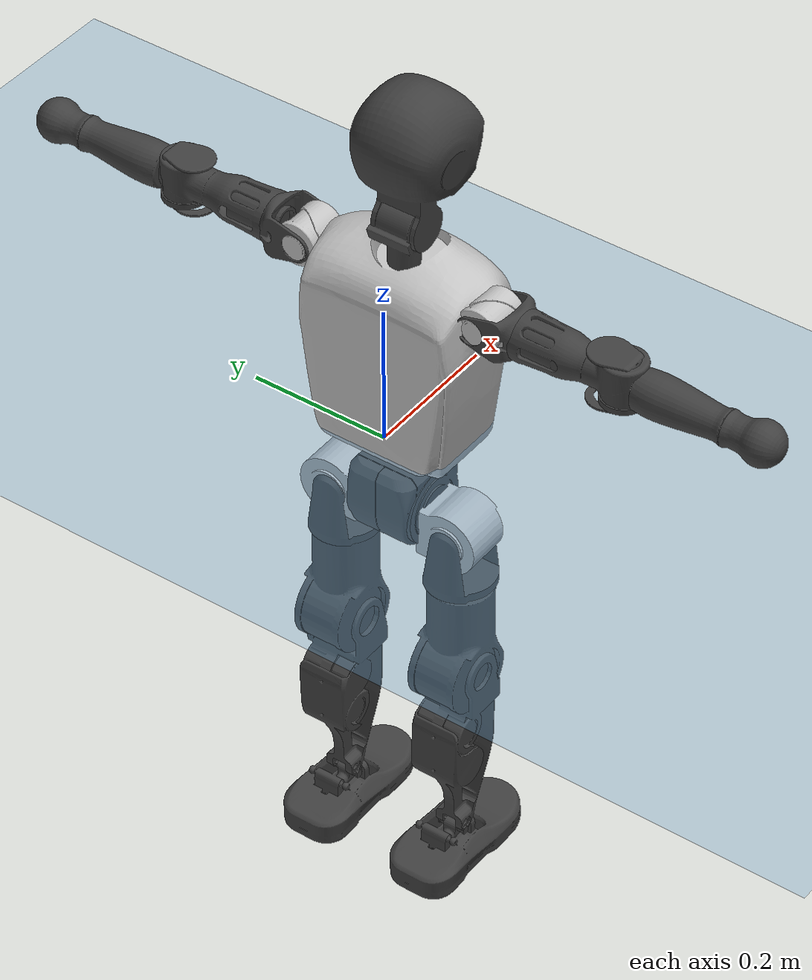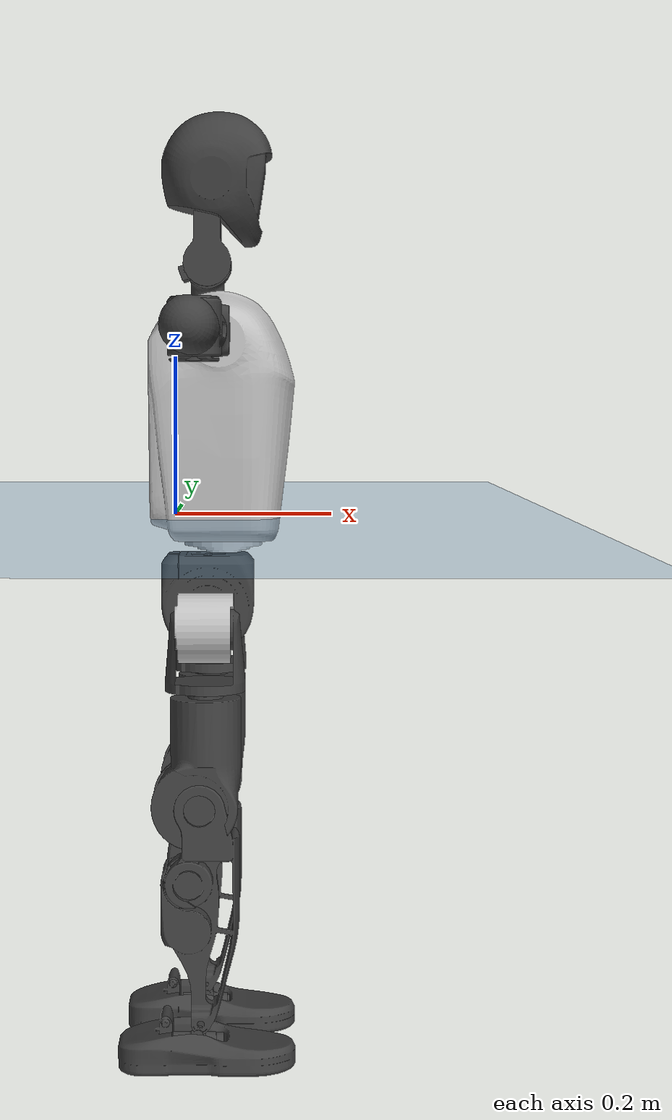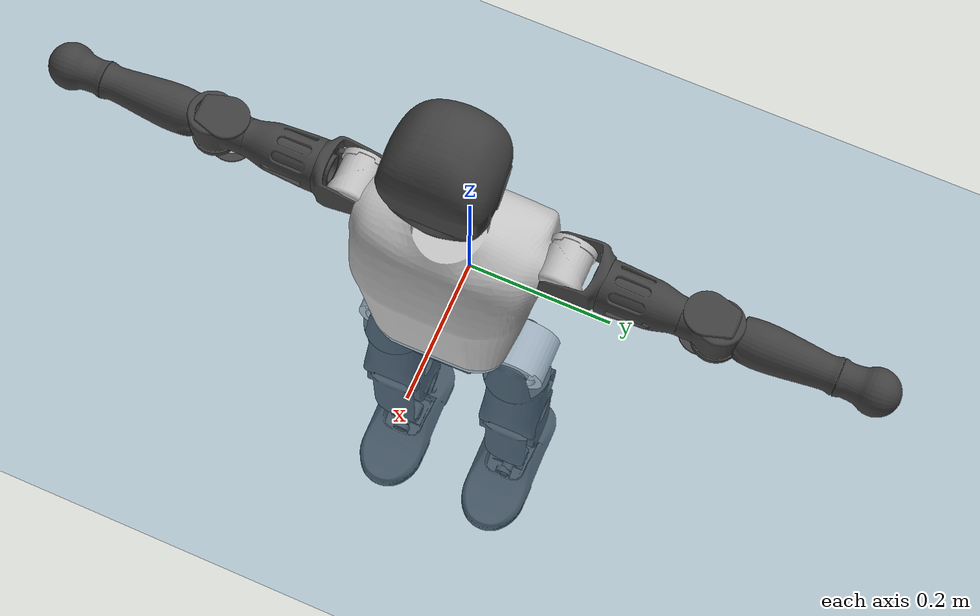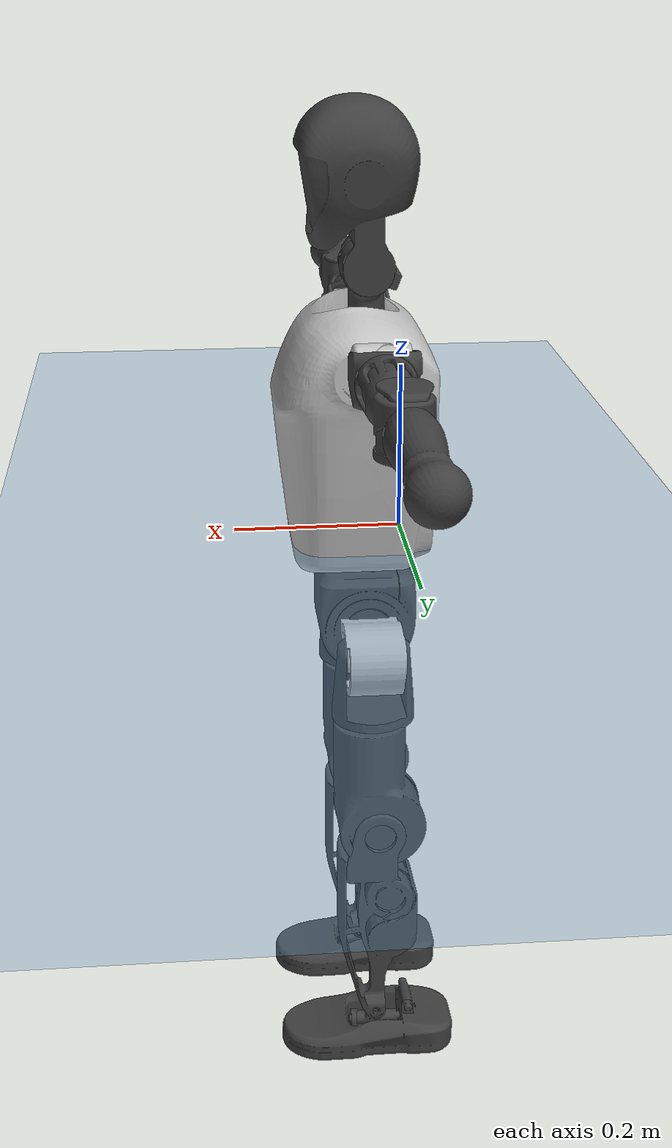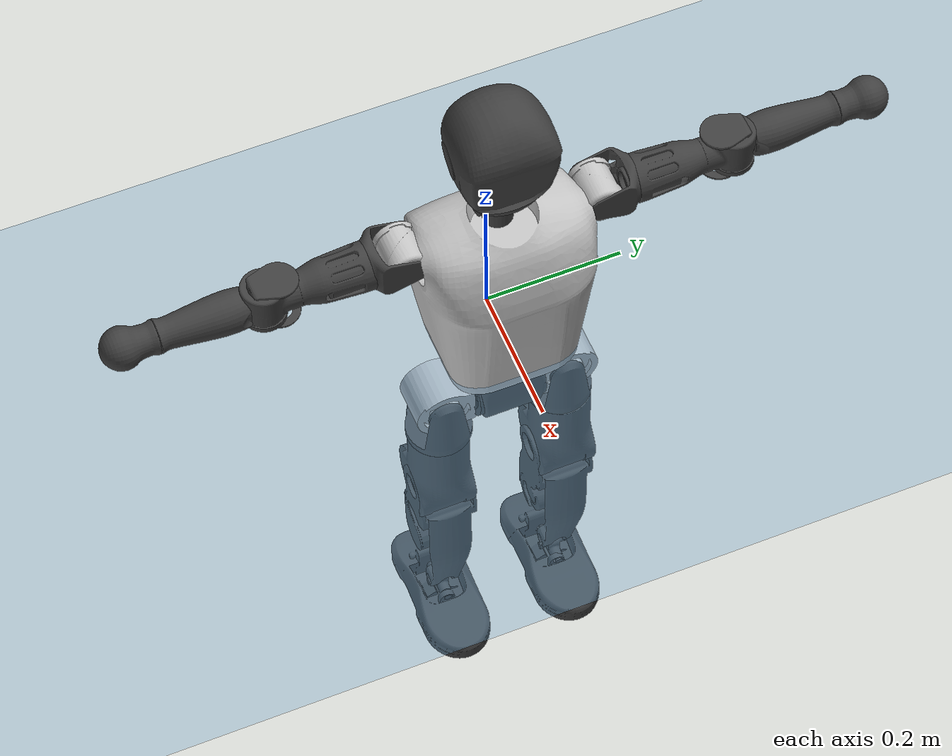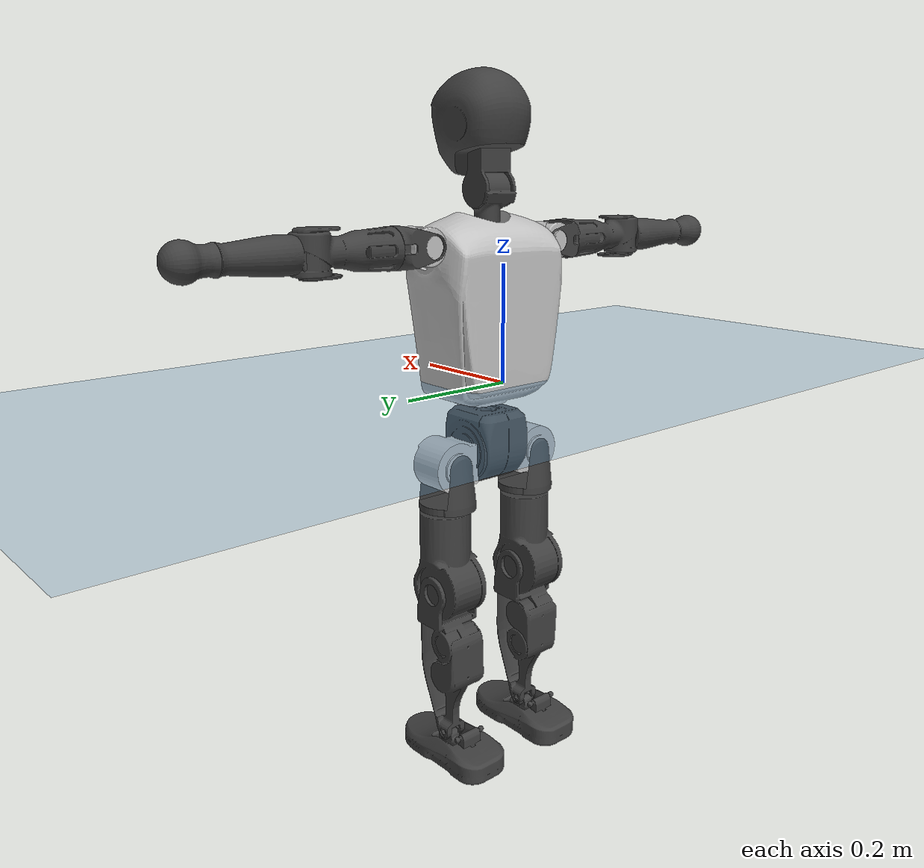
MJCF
<mujoco model="T1">
  <compiler angle="radian" assetdir="assets" balanceinertia="true" inertiafromgeom="false"/>

  <option timestep="0.005" density="1.2" viscosity="2e-05"/>

  <size nkey="1"/>

  <visual>
    <quality shadowsize="8192"/>
    <map shadowclip="0.5"/>
  </visual>

  <default>
    <default class="/">
      <joint armature="0.01" damping="0.01" frictionloss="0.1"/>
      <geom contype="0" conaffinity="0" group="1" solref="-1000 -80"/>
      <site size="0.01 0.005 0.005" group="5"/>
      <general forcelimited="true" biastype="affine" gainprm="25" biasprm="0 -25 -0.6"/>
      <default class="t1">
        <geom rgba="0.25 0.25 0.25 1"/>
        <default class="visual">
          <geom type="mesh" group="2"/>
        </default>
        <default class="collision">
          <geom group="3"/>
        </default>
        <default class="foot">
          <geom size="0.1115 0.05 0.015" type="box" condim="6" group="4" priority="1" solimp="0.015 1 0.015"/>
        </default>
        <default class="reward_collision_sphere">
          <geom group="5" rgba="1 0 0 1"/>
        </default>
      </default>
    </default>
  </default>

  <asset>
    <texture type="skybox" colorspace="auto" name="//unnamed_texture_0" builtin="gradient" rgb1="0.95 0.95 0.95" rgb2="0.95 0.95 0.95" width="100" height="600"/>
    <texture type="2d" colorspace="auto" name="texplane" builtin="checker" rgb1="0.345 0.575 0.748" rgb2="0.345 0.575 0.748" markrgb="1 1 1" width="512" height="512"/>
    <material name="MatPlane" class="/" texture="texplane" texuniform="true" texrepeat="2 2" specular="0.9"/>
    <mesh name="Trunk" class="/" file="Trunk.stl"/>
    <mesh name="H1" class="/" file="H1.stl"/>
    <mesh name="H2" class="/" file="H2.stl"/>
    <mesh name="AL1" class="/" file="AL1.stl"/>
    <mesh name="AL2" class="/" file="AL2.stl"/>
    <mesh name="AL3" class="/" file="AL3.stl"/>
    <mesh name="left_hand_link" class="/" file="left_hand_link.stl"/>
    <mesh name="AR1" class="/" file="AR1.stl"/>
    <mesh name="AR2" class="/" file="AR2.stl"/>
    <mesh name="AR3" class="/" file="AR3.stl"/>
    <mesh name="right_hand_link" class="/" file="right_hand_link.stl"/>
    <mesh name="Waist" class="/" file="Waist.stl"/>
    <mesh name="Hip_Pitch_Left" class="/" file="Hip_Pitch_Left.stl"/>
    <mesh name="Hip_Roll_Left" class="/" file="Hip_Roll_Left.stl"/>
    <mesh name="Hip_Yaw_Left" class="/" file="Hip_Yaw_Left.stl"/>
    <mesh name="Shank_Left" class="/" file="Shank_Left.stl"/>
    <mesh name="Ankle_Cross_Left" class="/" file="Ankle_Cross_Left.stl"/>
    <mesh name="left_foot_link" class="/" file="left_foot_link.stl"/>
    <mesh name="Hip_Pitch_Right" class="/" file="Hip_Pitch_Right.stl"/>
    <mesh name="Hip_Roll_Right" class="/" file="Hip_Roll_Right.stl"/>
    <mesh name="Hip_Yaw_Right" class="/" file="Hip_Yaw_Right.stl"/>
    <mesh name="Shank_Right" class="/" file="Shank_Right.stl"/>
    <mesh name="Ankle_Cross_Right" class="/" file="Ankle_Cross_Right.stl"/>
    <mesh name="right_foot_link" class="/" file="right_foot_link.stl"/>
  </asset>

  <worldbody>
    <geom name="floor" class="/" size="100 100 0.125" type="plane" group="0" material="MatPlane"/>
    <light name="toplight_shadow" class="/" pos="0 0 5" dir="0.0990148 0.0990148 -0.990148" type="directional" ambient="0.04 0.04 0.04" diffuse="0.55 0.55 0.55" specular="0.12 0.12 0.12"/>
    <light name="toplight_fill" class="/" pos="0 0 5" dir="0.0990148 0.0990148 -0.990148" type="directional" castshadow="false" ambient="0.04 0.04 0.04" diffuse="0.3 0.3 0.3" specular="0.08 0.08 0.08"/>
    <body name="trunk" childclass="t1" pos="-0.00102265 0.000294073 0.00272874" quat="0.999999 6.83218e-05 1.15546e-05 0.00111526">
      <inertial pos="0.0346442 -0.00269231 0.111828" quat="0.999952 0.000901214 -0.00952819 0.00229823" mass="7.33815" diaginertia="0.0147506 0.0355883 0.0703473"/>
      <joint name="//unnamed_joint_0" type="free" armature="0" damping="0" frictionloss="0"/>
      <geom name="//unnamed_geom_1" class="visual" rgba="0.76 0.76 0.76 1" mesh="Trunk"/>
      <geom name="//unnamed_geom_2" class="collision" size="0.0647423 0.086323 0.129485" pos="0.0413099 0 0.125176" type="box"/>
      <geom name="//unnamed_geom_3" class="reward_collision_sphere" size="0.0992715" pos="0.0413099 0 0.104313"/>
      <geom name="//unnamed_geom_4" class="reward_collision_sphere" size="0.0129485" pos="0.0413099 0.072935 0"/>
      <geom name="//unnamed_geom_5" class="reward_collision_sphere" size="0.0129485" pos="0.0413099 -0.072935 0"/>
      <geom name="//unnamed_geom_6" class="reward_collision_sphere" size="0.0129485" pos="0.0413099 0.0918123 0.187764"/>
      <geom name="//unnamed_geom_7" class="reward_collision_sphere" size="0.0129485" pos="0.0413099 -0.0918123 0.187764"/>
      <site name="imu" pos="-0.00493762 0.00371457 -0.00563037" size="0.0086323"/>
      <camera name="track" pos="0 -1.71612 0" quat="0.707107 0.707107 0 0" mode="trackcom"/>
      <camera name="ego_camera" pos="0.0839967 0 0.438117" quat="-0.5 -0.5 0.5 0.5"/>
      <body name="H1" pos="0.042748 -0.000965377 0.25136" quat="1 0.000640575 6.53748e-05 -3.54305e-05">
        <inertial pos="-0.000699353 -0.00235526 0.0618824" quat="0.763874 -0.0128419 0.00163344 0.645236" mass="0.293298" diaginertia="3.70761e-05 0.00010863 0.000188184"/>
        <joint name="AAHead_yaw" pos="0 0 0" axis="-0.0132078 0.00315936 0.999908" range="-1.57055 1.58488" armature="0.00911804" damping="0.00236311" frictionloss="0.0860517"/>
        <geom name="//unnamed_geom_8" class="visual" mesh="H1"/>
        <body name="H2" pos="-0.000289234 -0.00297653 0.0644288" quat="0.999999 -0.000682437 0.00115485 -0.000258201">
          <inertial pos="0.00560408 1.06196e-05 0.103896" quat="0.988453 0.105923 -0.0755698 -0.0776548" mass="0.401775" diaginertia="0.000313569 0.000911241 0.00221606"/>
          <joint name="Head_pitch" pos="0 0 0" axis="-0.00667857 -0.999911 -0.0115662" stiffness="0.00910839" range="-1.22848 0.294338" armature="0.00974626" damping="0" frictionloss="0.0883186"/>
          <geom name="//unnamed_geom_9" class="visual" mesh="H2"/>
          <geom name="//unnamed_geom_10" class="collision" size="0.0690584" pos="0.00688498 0 0.114745"/>
          <geom name="//unnamed_geom_11" class="reward_collision_sphere" size="0.0776907" pos="0.01377 0 0.104313"/>
        </body>
      </body>
      <body name="AL1" pos="0.0416339 0.0944589 0.230596" quat="0.999999 0.000392661 0.000918362 -0.00112876">
        <inertial pos="-0.00108555 0.0406289 -0.000345926" quat="0.504297 0.49569 -0.504269 0.49567" mass="0.337519" diaginertia="0.000219503 0.000586259 0.000351886"/>
        <joint name="Left_Shoulder_Pitch" pos="0 0 0" axis="0.00330522 0.99999 0.00286973" range="-3.25522 1.23606" armature="0.00792848" damping="0.00257289" frictionloss="0.074184"/>
        <geom name="//unnamed_geom_12" class="visual" rgba="0.76 0.76 0.76 1" mesh="AL1"/>
        <body name="AL2" pos="-0.00198889 0.0441497 -4.47755e-05" quat="1 6.22995e-05 0.000163295 0.000136756">
          <inertial pos="0.00196452 0.0313893 0.00154813" quat="0.49041 0.507547 -0.488467 0.513122" mass="0.108744" diaginertia="6.37975e-05 0.000162977 0.000233425"/>
          <joint name="Left_Shoulder_Roll" pos="0 0 0" axis="-0.999993 0.00126951 -0.00356402" stiffness="0.0103711" range="-1.54866 1.76327" armature="0.00825599" damping="0" frictionloss="0.0852694"/>
          <geom name="//unnamed_geom_13" class="visual" mesh="AL2"/>
          <body name="AL3" pos="0.00319173 0.0531481 -0.000851677" quat="1 1.50837e-05 -8.26402e-06 0.000341855">
            <inertial pos="0.0024605 0.0733244 7.79803e-05" quat="0.715246 0.698851 0.00547326 -0.000402205" mass="0.642063" diaginertia="0.00187807 0.00600728 0.00074345"/>
            <joint name="Left_Elbow_Pitch" pos="0 0 0" axis="-0.000749191 -0.999999 0.00130287" stiffness="0.00241286" range="-2.25303 2.3151" armature="0.00861465" damping="0.0192912" frictionloss="0.0750347"/>
            <geom name="//unnamed_geom_14" class="visual" mesh="AL3"/>
            <geom name="//unnamed_geom_15" class="collision" size="0.0258969 0.0647423" pos="0 0.0429029 0" quat="0.707105 0.707108 0 0" type="cylinder"/>
            <geom name="//unnamed_geom_16" class="reward_collision_sphere" size="0.0310763"/>
            <body name="left_hand_link" pos="-0.00212342 0.128943 0.00122459" quat="0.999999 0.000285333 0.000263626 0.00125982">
              <inertial pos="0.000971672 0.0942149 0.00322423" quat="0.707984 0.706228 -0.000353567 -0.00110475" mass="0.21271" diaginertia="0.00131286 0.00392859 0.000271564"/>
              <joint name="Left_Elbow_Yaw" pos="0 0 0" axis="0.00611691 -0.00881881 0.999942" range="-2.49651 -0.0182325" armature="0.0091634" damping="0.00680723" frictionloss="0.0740824"/>
              <geom name="//unnamed_geom_17" class="visual" mesh="left_hand_link"/>
              <geom name="//unnamed_geom_18" class="collision" size="0.0258969 0.0755327" pos="0 0.111548 0" quat="0.707105 0.707108 0 0" type="cylinder"/>
              <geom name="//unnamed_geom_19" class="reward_collision_sphere" size="0.0431615"/>
              <geom name="//unnamed_geom_20" class="reward_collision_sphere" size="0.0302131" pos="0 0.0943864 0"/>
              <geom name="//unnamed_geom_21" class="reward_collision_sphere" size="0.0302131" pos="0 0.184483 0"/>
            </body>
          </body>
        </body>
      </body>
      <body name="AR1" pos="0.0373164 -0.0871442 0.227361" quat="1 0.000161426 5.89308e-05 -0.000159875">
        <inertial pos="-0.00187027 -0.0366762 0.00250599" quat="0.504437 0.494961 -0.505182 0.495327" mass="0.348621" diaginertia="0.000201797 0.00057387 0.000361478"/>
        <joint name="Right_Shoulder_Pitch" pos="0 0 0" axis="0.000979727 -0.999989 0.00452177" stiffness="0.00240701" range="-1.21995 3.31831" armature="0.00818503" damping="0.0118819" frictionloss="0.0749135"/>
        <geom name="//unnamed_geom_22" class="visual" rgba="0.76 0.76 0.76 1" mesh="AR1"/>
        <body name="AR2" pos="-0.0017309 -0.0411503 -3.13775e-05" quat="1 -0.000253299 -0.000386321 -0.000634855">
          <inertial pos="0.00459806 -0.0329001 0.00316657" quat="0.511388 0.487829 -0.511088 0.489177" mass="0.104144" diaginertia="6.12838e-05 0.000163896 0.00022581"/>
          <joint name="Right_Shoulder_Roll" pos="0 0 0" axis="-0.99981 -0.0190201 0.00418324" range="-1.68247 1.58538" armature="0.00767826" damping="0.0195265" frictionloss="0.0862648"/>
          <geom name="//unnamed_geom_23" class="visual" mesh="AR2"/>
          <body name="AR3" pos="0.000304854 -0.052581 -0.000554545" quat="1 -8.90847e-05 -4.24468e-05 0.000100119">
            <inertial pos="-0.00089436 -0.0744369 0.0021978" quat="0.714784 0.6993 -0.00223845 0.00767369" mass="0.668079" diaginertia="0.00206879 0.00579019 0.000793203"/>
            <joint name="Right_Elbow_Pitch" pos="0 0 0" axis="-0.00779312 0.999901 -0.0117143" stiffness="0.00564324" range="-2.21457 2.21906" armature="0.00872992" damping="0.0186156" frictionloss="0.085054"/>
            <geom name="//unnamed_geom_24" class="visual" mesh="AR3"/>
            <geom name="//unnamed_geom_25" class="collision" size="0.0258969 0.0647423" pos="0 -0.0429029 0" quat="0.707105 0.707108 0 0" type="cylinder"/>
            <geom name="//unnamed_geom_26" class="reward_collision_sphere" size="0.0310763"/>
            <body name="right_hand_link" pos="-0.000546866 -0.126162 -0.00164596" quat="0.999999 -0.000101967 0.00128517 0.000357099">
              <inertial pos="-0.000342485 -0.0942669 -0.00166571" quat="0.706185 0.708015 0.00196283 0.00366641" mass="0.205635" diaginertia="0.00128484 0.00378788 0.000257699"/>
              <joint name="Right_Elbow_Yaw" pos="0 0 0" axis="0.00079694 0.00226347 0.999997" range="-0.00415164 2.42782" armature="0.00837033" damping="0" frictionloss="0.09805"/>
              <geom name="//unnamed_geom_27" class="visual" mesh="right_hand_link"/>
              <geom name="//unnamed_geom_28" class="collision" size="0.0258969 0.0755327" pos="0 -0.111548 0" quat="0.707105 0.707108 0 0" type="cylinder"/>
              <geom name="//unnamed_geom_29" class="reward_collision_sphere" size="0.0431615"/>
              <geom name="//unnamed_geom_30" class="reward_collision_sphere" size="0.0302131" pos="0 -0.0943864 0"/>
              <geom name="//unnamed_geom_31" class="reward_collision_sphere" size="0.0302131" pos="0 -0.184483 0"/>
            </body>
          </body>
        </body>
      </body>
      <body name="Waist" pos="0.042758 0.00138557 -0.120531" quat="0.999999 0.000193375 -0.000938204 0.00109739">
        <inertial pos="0.0015009 0.0019979 0.0079594" quat="0.983072 -0.000862643 -0.183211 0.00136371" mass="1.58435" diaginertia="0.000804529 0.00236363 0.00590449"/>
        <joint name="Waist" pos="0 0 0" axis="-0.00204662 -0.000622855 0.999998" stiffness="0.00693044" range="-1.53088 1.5315" armature="0.00745204" damping="0.0142023" frictionloss="0.0873214"/>
        <geom name="//unnamed_geom_32" class="visual" mesh="Waist"/>
        <body name="Hip_Pitch_Left" pos="-0.000184815 0.0928785 0.00240587" quat="1 8.00226e-06 -1.90237e-06 -8.1124e-06">
          <inertial pos="-0.00203367 -0.00550134 -0.0178545" quat="0.975531 0.219109 0.0181511 -0.00061154" mass="0.673126" diaginertia="0.000276686 0.000662692 0.00155162"/>
          <joint name="Left_Hip_Pitch" pos="0 0 0" axis="0.000695167 0.999998 -0.00163176" stiffness="0.00063872" range="-1.83036 1.55486" armature="0.00750058" damping="0.0154694" frictionloss="0.0891633"/>
          <geom name="//unnamed_geom_33" class="visual" rgba="0.76 0.76 0.76 1" mesh="Hip_Pitch_Left"/>
          <body name="Hip_Roll_Left" pos="0.00113623 -0.00351182 -0.0211113" quat="1 -0.000274262 -0.000180469 0.000284102">
            <inertial pos="0.00343069 -0.00284525 -0.0570866" quat="0.706995 -0.00934821 -0.00744754 0.707117" mass="0.243527" diaginertia="0.000273446 0.000710493 0.000651029"/>
            <joint name="Left_Hip_Roll" pos="0 0 0" axis="-0.999965 -0.00837873 0.000509492" range="-1.56387 0.186958" armature="0.00965607" damping="0.0189789" frictionloss="0.0852749"/>
            <geom name="//unnamed_geom_34" class="visual" mesh="Hip_Roll_Left"/>
            <geom name="//unnamed_geom_35" class="reward_collision_sphere" size="0.0474777"/>
            <body name="Hip_Yaw_Left" pos="0.00155261 0.00266864 -0.0832649" quat="1 7.00548e-05 0.000354043 8.98458e-05">
              <inertial pos="-0.00525089 -0.000445727 -0.0919145" quat="0.691419 -0.0316167 -0.0322812 0.721039" mass="1.41012" diaginertia="0.00401029 0.011857 0.00321921"/>
              <joint name="Left_Hip_Yaw" pos="0 0 0" axis="-0.00313884 0.00647034 -0.999974" stiffness="0.00890927" range="-0.979773 1.02285" armature="0.00847039" damping="0" frictionloss="0.0981569"/>
              <geom name="//unnamed_geom_36" class="visual" mesh="Hip_Yaw_Left"/>
              <geom name="//unnamed_geom_37" class="collision" size="0.0431615 0.0690584" type="cylinder"/>
              <body name="Shank_Left" pos="-0.0103528 -0.00113819 -0.143238" quat="0.999999 -0.000455981 0.0010344 0.000525014">
                <inertial pos="-0.00408488 -0.00246306 -0.127266" quat="0.998047 -0.000468874 -0.0215119 0.0586526" mass="1.09353" diaginertia="0.00527611 0.0164403 0.0022651"/>
                <joint name="Left_Knee_Pitch" pos="0 0 0" axis="0.000851798 0.999839 0.0179334" stiffness="0.000713714" range="0.0104514 2.30275" armature="0.00978079" damping="0" frictionloss="0.0871738"/>
                <geom name="//unnamed_geom_38" class="visual" mesh="Shank_Left"/>
                <geom name="//unnamed_geom_39" class="collision" size="0.0431615 0.0647423" pos="0 0 -0.125176" type="cylinder"/>
                <geom name="//unnamed_geom_40" class="reward_collision_sphere" size="0.05611"/>
                <body name="Ankle_Cross_Left" pos="0.00261319 -0.00287748 -0.293574" quat="0.999999 -0.00120609 -0.000658084 -0.000334148">
                  <inertial pos="-0.00191484 -0.00114451 -0.00645425" quat="0.452425 0.543044 0.551201 0.443387" mass="0.0460129" diaginertia="4.69004e-06 1.21482e-05 1.42787e-05"/>
                  <joint name="Left_Ankle_Pitch" pos="0 0 0" axis="0.00167986 0.999998 0.000753614" stiffness="0.0053236" range="-0.883747 0.367817" armature="0.00989062" damping="0.010885" frictionloss="0.0984755"/>
                  <geom name="//unnamed_geom_41" class="visual" mesh="Ankle_Cross_Left"/>
                  <body name="left_foot_link" pos="-0.00317352 -0.00303355 -0.0141684" quat="1 -0.000304962 -7.48615e-05 -0.00022578">
                    <inertial pos="-0.00166635 0.00136566 -0.0103969" quat="0.00673497 0.617221 0.00829856 0.786717" mass="0.439882" diaginertia="0.000401388 0.00109084 0.00268866"/>
                    <joint name="Left_Ankle_Roll" pos="0 0 0" axis="-0.999959 0.00670635 0.00601027" stiffness="0.00114567" range="-0.450453 0.451656" armature="0.00877407" damping="0.0095173" frictionloss="0.0844506"/>
                    <geom name="//unnamed_geom_42" class="visual" mesh="left_foot_link"/>
                    <geom name="left_foot" class="foot" size="0.102932 0.0429196 0.0126682" pos="0.00688498 0 -0.015647"/>
                    <geom name="//unnamed_geom_44" class="reward_collision_sphere" size="0.044888" pos="0.00688498 0 -0.015647"/>
                    <geom name="//unnamed_geom_45" class="reward_collision_sphere" size="0.0258969" pos="0.0654073 -0.0197353 -0.015647"/>
                    <geom name="//unnamed_geom_46" class="reward_collision_sphere" size="0.0258969" pos="-0.0481948 -0.0197353 -0.015647"/>
                    <site name="left_foot" class="foot" pos="0.00688498 0 -0.015647" size="0.0086323"/>
                  </body>
                </body>
              </body>
            </body>
          </body>
        </body>
        <body name="Hip_Pitch_Right" pos="-0.00164929 -0.0916579 0.000448965" quat="1 0.000817805 -3.52348e-05 0.000354107">
          <inertial pos="-0.00216484 0.00634665 -0.0212986" quat="0.973751 -0.226954 0.016365 -0.00570032" mass="0.63472" diaginertia="0.000278786 0.00070217 0.0014973"/>
          <joint name="Right_Hip_Pitch" pos="0 0 0" axis="0.00187541 -0.999994 -0.00278513" range="-1.59041 1.7417" armature="0.00958664" damping="0.00862989" frictionloss="0.0864849"/>
          <geom name="//unnamed_geom_47" class="visual" rgba="0.76 0.76 0.76 1" mesh="Hip_Pitch_Right"/>
          <body name="Hip_Roll_Right" pos="0.00187792 -0.00151603 -0.0217064" quat="1 0.000326831 -0.000297843 -0.000563194">
            <inertial pos="0.00124886 0.00265518 -0.0561587" quat="0.713101 -0.00490215 0.00291766 0.701039" mass="0.243821" diaginertia="0.000269951 0.000706088 0.00063023"/>
            <joint name="Right_Hip_Roll" pos="0 0 0" axis="-0.999884 0.00128274 0.0151783" stiffness="0.0166105" range="-0.207054 1.56046" armature="0.00728091" damping="0.00818011" frictionloss="0.0874154"/>
            <geom name="//unnamed_geom_48" class="visual" mesh="Hip_Roll_Right"/>
            <geom name="//unnamed_geom_49" class="reward_collision_sphere" size="0.0474777"/>
            <body name="Hip_Yaw_Right" pos="-0.0019316 -0.000489047 -0.085469" quat="1 -0.000212311 -9.68437e-05 7.31956e-05">
              <inertial pos="-0.00739341 -5.8824e-05 -0.0934846" quat="0.708955 -0.0289387 -0.0268284 0.704149" mass="1.44054" diaginertia="0.00396852 0.0117874 0.00320617"/>
              <joint name="Right_Hip_Yaw" pos="0 0 0" axis="0.00298867 -0.00661238 -0.999974" range="-0.969123 0.946246" armature="0.00828139" damping="0" frictionloss="0.0867793"/>
              <geom name="//unnamed_geom_50" class="visual" mesh="Hip_Yaw_Right"/>
              <geom name="//unnamed_geom_51" class="collision" size="0.0431615 0.0690584" type="cylinder"/>
              <body name="Shank_Right" pos="-0.00789216 0.00171385 -0.136868" quat="1 -1.01873e-05 -2.16147e-05 0.000440044">
                <inertial pos="-0.00422109 0.000976228 -0.130614" quat="0.998932 0.00422902 -0.0320237 -0.0330396" mass="1.0846" diaginertia="0.00531188 0.0161949 0.00236078"/>
                <joint name="Right_Knee_Pitch" pos="0 0 0" axis="-0.00357339 -0.999976 -0.0060062" stiffness="0.00133428" range="-2.32434 0.00477252" armature="0.00974835" damping="0" frictionloss="0.0963991"/>
                <geom name="//unnamed_geom_52" class="visual" mesh="Shank_Right"/>
                <geom name="//unnamed_geom_53" class="collision" size="0.0431615 0.0647423" pos="0 0 -0.125176" type="cylinder"/>
                <geom name="//unnamed_geom_54" class="reward_collision_sphere" size="0.05611"/>
                <body name="Ankle_Cross_Right" pos="-0.00299592 -0.000981025 -0.291939" quat="1 -6.77091e-05 0.000488064 0.000117349">
                  <inertial pos="-0.00335954 0.000818084 -0.00817482" quat="0.444445 0.548251 0.55296 0.44286" mass="0.0465688" diaginertia="4.41554e-06 1.18955e-05 1.36664e-05"/>
                  <joint name="Right_Ankle_Pitch" pos="0 0 0" axis="-0.00273763 -0.999955 -0.00909208" stiffness="0.00557726" range="-0.405747 0.881253" armature="0.00906616" damping="0.019694" frictionloss="0.0869378"/>
                  <geom name="//unnamed_geom_55" class="visual" mesh="Ankle_Cross_Right"/>
                  <body name="right_foot_link" pos="0.000577241 -0.00177791 -0.014827" quat="0.999999 0.000591575 -0.000964231 -9.70531e-05">
                    <inertial pos="-0.00247049 -0.00030059 -0.00947554" quat="0.00287471 0.626948 0.00393748 0.779046" mass="0.440883" diaginertia="0.000411789 0.00106978 0.00262252"/>
                    <joint name="Right_Ankle_Roll" pos="0 0 0" axis="-0.999991 -0.00421856 -0.000954752" stiffness="0.00856411" range="-0.382674 0.383804" armature="0.00939147" damping="0.00681058" frictionloss="0.0907328"/>
                    <geom name="//unnamed_geom_56" class="visual" mesh="right_foot_link"/>
                    <geom name="right_foot" class="foot" size="0.0910145 0.0426799 0.0131749" pos="0.00688498 0 -0.015647"/>
                    <geom name="//unnamed_geom_58" class="reward_collision_sphere" size="0.0345292"/>
                    <geom name="//unnamed_geom_59" class="reward_collision_sphere" size="0.0258969" pos="0.00688498 0 -0.015647"/>
                    <geom name="//unnamed_geom_60" class="reward_collision_sphere" size="0.0258969" pos="0.0654073 0.0197353 -0.015647"/>
                    <geom name="//unnamed_geom_61" class="reward_collision_sphere" size="0.0258969" pos="-0.0481948 0.0197353 -0.015647"/>
                    <site name="right_foot" class="foot" pos="0.00688498 0 -0.015647" size="0.0086323"/>
                  </body>
                </body>
              </body>
            </body>
          </body>
        </body>
      </body>
    </body>
  </worldbody>

  <contact>
    <pair class="/" geom1="floor" geom2="left_foot" name="//unnamed_contact_0"/>
    <pair class="/" geom1="floor" geom2="right_foot" name="//unnamed_contact_1"/>
  </contact>

  <actuator>
    <general name="AAHead_yaw" class="/" joint="AAHead_yaw" forcerange="-5.63094 5.63094" gainprm="21.0979" biasprm="0 -21.0979 -0.478085"/>
    <general name="Head_pitch" class="/" joint="Head_pitch" forcerange="-6.31428 6.31428" gainprm="21.0979" biasprm="0 -21.0979 -0.478085"/>
    <general name="Left_Shoulder_Pitch" class="/" joint="Left_Shoulder_Pitch" forcerange="-15.2069 15.2069" gainprm="21.0979" biasprm="0 -21.0979 -0.478085"/>
    <general name="Left_Shoulder_Roll" class="/" joint="Left_Shoulder_Roll" forcerange="-13.8419 13.8419" gainprm="21.0979" biasprm="0 -21.0979 -0.478085"/>
    <general name="Left_Elbow_Pitch" class="/" joint="Left_Elbow_Pitch" forcerange="-15.1923 15.1923" gainprm="21.0979" biasprm="0 -21.0979 -0.478085"/>
    <general name="Left_Elbow_Yaw" class="/" joint="Left_Elbow_Yaw" forcerange="-16.4873 16.4873" gainprm="21.0979" biasprm="0 -21.0979 -0.478085"/>
    <general name="Right_Shoulder_Pitch" class="/" joint="Right_Shoulder_Pitch" forcerange="-16.3246 16.3246" gainprm="21.0979" biasprm="0 -21.0979 -0.478085"/>
    <general name="Right_Shoulder_Roll" class="/" joint="Right_Shoulder_Roll" forcerange="-14.0976 14.0976" gainprm="21.0979" biasprm="0 -21.0979 -0.478085"/>
    <general name="Right_Elbow_Pitch" class="/" joint="Right_Elbow_Pitch" forcerange="-15.6898 15.6898" gainprm="21.0979" biasprm="0 -21.0979 -0.478085"/>
    <general name="Right_Elbow_Yaw" class="/" joint="Right_Elbow_Yaw" forcerange="-15.7747 15.7747" gainprm="21.0979" biasprm="0 -21.0979 -0.478085"/>
    <general name="Waist" class="/" joint="Waist" forcerange="-26.8974 26.8974" gainprm="21.0979" biasprm="0 -21.0979 -0.478085"/>
    <general name="Left_Hip_Pitch" class="/" joint="Left_Hip_Pitch" forcerange="-35.2208 35.2208" gainprm="21.0979" biasprm="0 -21.0979 -0.478085"/>
    <general name="Left_Hip_Roll" class="/" joint="Left_Hip_Roll" forcerange="-27.1537 27.1537" gainprm="21.0979" biasprm="0 -21.0979 -0.478085"/>
    <general name="Left_Hip_Yaw" class="/" joint="Left_Hip_Yaw" forcerange="-25.3478 25.3478" gainprm="21.0979" biasprm="0 -21.0979 -0.478085"/>
    <general name="Left_Knee_Pitch" class="/" joint="Left_Knee_Pitch" forcerange="-50.506 50.506" gainprm="21.0979" biasprm="0 -21.0979 -0.478085"/>
    <general name="Left_Ankle_Pitch" class="/" joint="Left_Ankle_Pitch" forcerange="-17.1882 17.1882" gainprm="21.0979" biasprm="0 -21.0979 -0.478085"/>
    <general name="Left_Ankle_Roll" class="/" joint="Left_Ankle_Roll" forcerange="-12.8879 12.8879" gainprm="21.0979" biasprm="0 -21.0979 -0.478085"/>
    <general name="Right_Hip_Pitch" class="/" joint="Right_Hip_Pitch" forcerange="-41.5724 41.5724" gainprm="21.0979" biasprm="0 -21.0979 -0.478085"/>
    <general name="Right_Hip_Roll" class="/" joint="Right_Hip_Roll" forcerange="-25.8459 25.8459" gainprm="21.0979" biasprm="0 -21.0979 -0.478085"/>
    <general name="Right_Hip_Yaw" class="/" joint="Right_Hip_Yaw" forcerange="-28.6484 28.6484" gainprm="21.0979" biasprm="0 -21.0979 -0.478085"/>
    <general name="Right_Knee_Pitch" class="/" joint="Right_Knee_Pitch" forcerange="-51.0275 51.0275" gainprm="21.0979" biasprm="0 -21.0979 -0.478085"/>
    <general name="Right_Ankle_Pitch" class="/" joint="Right_Ankle_Pitch" forcerange="-16.0752 16.0752" gainprm="21.0979" biasprm="0 -21.0979 -0.478085"/>
    <general name="Right_Ankle_Roll" class="/" joint="Right_Ankle_Roll" forcerange="-13.0329 13.0329" gainprm="21.0979" biasprm="0 -21.0979 -0.478085"/>
  </actuator>

  <sensor>
    <gyro site="imu" name="imu_angular_velocity"/>
    <velocimeter site="imu" name="imu_linear_velocity"/>
    <framelinvel objtype="site" objname="left_foot" name="left_foot_global_linear_velocity"/>
    <framelinvel objtype="site" objname="right_foot" name="right_foot_global_linear_velocity"/>
  </sensor>

  <keyframe>
    <key name="home" qpos="0 0 0.6385 1 0 0 0 0 0 0 1.4 0 -0.4 0 -1.4 0 0.4 0 -0.4 0 0 0.8 -0.4 0 0.4 0 0 -0.8 0.4 0"/>
  </keyframe>
</mujoco>
